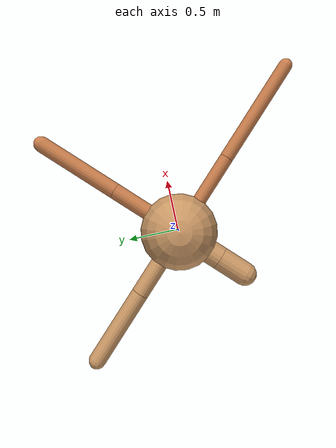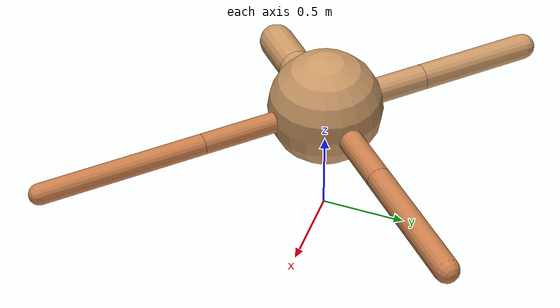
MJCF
<?xml version="1.0" ?>
<mujoco model="ant">

	<compiler angle="degree" coordinate="local" inertiafromgeom="true"/>

	<option integrator="RK4" timestep="0.01"/>

	<custom>

		<numeric data="0.0 0.0 0.55 1.0 0.0 0.0 0.0 0.0 1.0 0.0 -1.0 0.0 -1.0 0.0 1.0" name="init_qpos"/>

	</custom>

	<default>

		<joint armature="1" damping="1" limited="true"/>

		<geom conaffinity="0" condim="3" density="5.0" friction="1.5 0.1 0.1" margin="0.01" rgba="0.8 0.6 0.4 1"/>

	</default>

	<worldbody>

		<body name="torso" pos="0 0 0.75">

			<geom name="torso_geom" pos="0 0 0" size="0.3320922475321988" type="sphere"/>

			<!--joint armature="0" damping="0" limited="false" margin="0.01" name="root" pos="0 0 0" type="free"/-->

			<body name="front_left_leg" pos="0 0 0">

				<geom fromto="0 0 0 0.2 0.2 0" name="aux_1_geom" size="0.06942339143250789" type="capsule" rgba=".8 .5 .3 1"/>

				<body name="aux_1" pos="0.2 0.2 0">

					<joint axis="0 0 1" name="hip_1" pos="0.0 0.0 0.0" range="-40 40" type="hinge"/>

					<geom fromto="0 0 0 0.2632072197475617 0.2632072197475617 0" name="left_leg_geom" size="0.06942339143250789" type="capsule" rgba=".8 .5 .3 1"/>

					<body pos="0.2632072197475617 0.2632072197475617 0" name="front_left_foot">

						<joint axis="-1 1 0" name="ankle_1" pos="0.0 0.0 0.0" range="30 100" type="hinge"/>

						<geom fromto="0 0 0 0.5264144394951235 0.5264144394951235 0" name="left_ankle_geom" size="0.06942339143250789" type="capsule" rgba=".8 .5 .3 1"/>

					</body>

				</body>

			</body>

			<body name="front_right_leg" pos="0 0 0">

				<geom fromto="0 0 0 -0.2 0.2 0" name="aux_2_geom" size="0.07471906331618394" type="capsule"/>

				<body name="aux_2" pos="-0.2 0.2 0">

					<joint axis="0 0 1" name="hip_2" pos="0.0 0.0 0.0" range="-40 40" type="hinge"/>

					<geom fromto="0 0 0 -0.24085201178843452 0.24085201178843452 0" name="right_leg_geom" size="0.07471906331618394" type="capsule"/>

					<body pos="-0.24085201178843452 0.24085201178843452 0" name="front_right_foot">

						<joint axis="1 1 0" name="ankle_2" pos="0.0 0.0 0.0" range="-100 -30" type="hinge"/>

						<geom fromto="0 0 0 -0.48170402357686903 0.48170402357686903 0" name="right_ankle_geom" size="0.07471906331618394" type="capsule"/>

					</body>

				</body>

			</body>

			<body name="left_back_leg" pos="0 0 0">

				<geom fromto="0 0 0 -0.2 -0.2 0" name="aux_3_geom" size="0.10268683533099884" type="capsule"/>

				<body name="aux_3" pos="-0.2 -0.2 0">

					<joint axis="0 0 1" name="hip_3" pos="0.0 0.0 0.0" range="-40 40" type="hinge"/>

					<geom fromto="0 0 0 -0.09030631883829968 -0.09030631883829968 0" name="back_leg_geom" size="0.10268683533099884" type="capsule"/>

					<body pos="-0.09030631883829968 -0.09030631883829968 0" name="left_back_foot">

						<joint axis="-1 1 0" name="ankle_3" pos="0.0 0.0 0.0" range="-100 -30" type="hinge"/>

						<geom fromto="0 0 0 -0.18061263767659935 -0.18061263767659935 0" name="third_ankle_geom" size="0.10268683533099884" type="capsule"/>

					</body>

				</body>

			</body>

			<body name="right_back_leg" pos="0 0 0">

				<geom fromto="0 0 0 0.2 -0.2 0" name="aux_4_geom" size="0.059161024594831385" type="capsule" rgba=".8 .5 .3 1"/>

				<body name="aux_4" pos="0.2 -0.2 0">

					<joint axis="0 0 1" name="hip_4" pos="0.0 0.0 0.0" range="-40 40" type="hinge"/>

					<geom fromto="0 0 0 0.33265676959832646 -0.33265676959832646 0" name="rightback_leg_geom" size="0.059161024594831385" type="capsule" rgba=".8 .5 .3 1"/>

					<body pos="0.33265676959832646 -0.33265676959832646 0" name="right_back_foot">

						<joint axis="1 1 0" name="ankle_4" pos="0.0 0.0 0.0" range="30 100" type="hinge"/>

						<geom fromto="0 0 0 0.6653135391966529 -0.6653135391966529 0" name="fourth_ankle_geom" size="0.059161024594831385" type="capsule" rgba=".8 .5 .3 1"/>

					</body>

				</body>

			</body>

		</body>

	</worldbody>

	<actuator>

		<motor ctrllimited="true" ctrlrange="-1.0 1.0" joint="hip_4" gear="150"/>

		<motor ctrllimited="true" ctrlrange="-1.0 1.0" joint="ankle_4" gear="150"/>

		<motor ctrllimited="true" ctrlrange="-1.0 1.0" joint="hip_1" gear="150"/>

		<motor ctrllimited="true" ctrlrange="-1.0 1.0" joint="ankle_1" gear="150"/>

		<motor ctrllimited="true" ctrlrange="-1.0 1.0" joint="hip_2" gear="150"/>

		<motor ctrllimited="true" ctrlrange="-1.0 1.0" joint="ankle_2" gear="150"/>

		<motor ctrllimited="true" ctrlrange="-1.0 1.0" joint="hip_3" gear="150"/>

		<motor ctrllimited="true" ctrlrange="-1.0 1.0" joint="ankle_3" gear="150"/>

	</actuator>

</mujoco>
